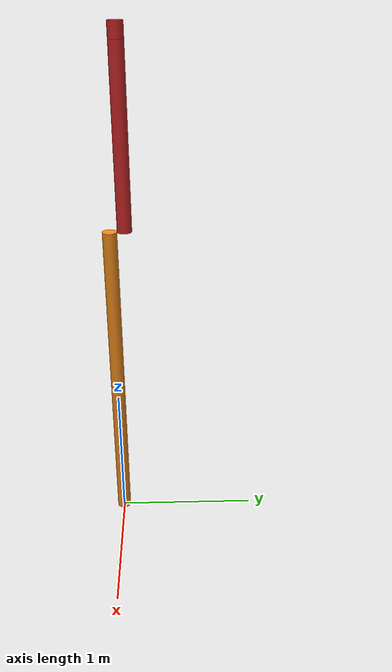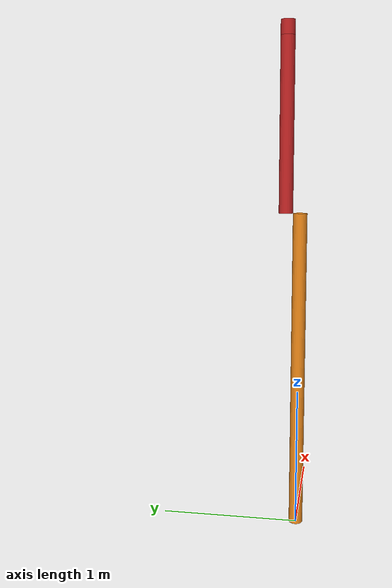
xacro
<?xml version="1.0"?>
<!-- Revolute-Revolute Manipulator -->
<robot name="rbt_pendulum" xmlns:xacro="http://www.ros.org/wiki/xacro">

	<xacro:property name="mass1" value="0.8" /> <!-- mass of Link 1 -->
	<xacro:property name="mass2" value="1.0" /> <!-- mass of Link 2 -->
	<xacro:property name="mass3" value="1.2" /> <!-- mass of Link 3 -->
	<xacro:property name="mass4" value="0.3" /> <!-- mass of Link 4 -->
	<xacro:property name="length1" value="2.3" /> <!-- Length of Link 1 -->
	<xacro:property name="length2" value="1.2" /> <!-- Length of Link 2 -->
	<xacro:property name="length3" value="0.1" /> <!-- Length of Link 3 -->
	<xacro:property name="length4" value="0.8" /> <!-- Length of Link 4 -->
	<xacro:property name="rod_radius" value="0.05" /> <!-- Same radius for all rod links -->

  <!-- Run Gazebo-specific initialization -->
  <xacro:include filename="$(find rbt_pendulum)/urdf/rbt_pendulum.gazebo" />

	<!-- Import Rviz colors -->
	<xacro:include filename="$(find rbt_pendulum)/urdf/materials.xacro" />

	<link name="world"/>

    <joint name="fixed" type="fixed">
    	<parent link="world"/>
    	<child link="link1"/>
  	</joint>

  	<link name="link1">
  		<collision>
  			<origin xyz="0 0 ${length1/2}" rpy="0 0 0"/>
  			<geometry>
  				<cylinder length="${length1}" radius="${rod_radius}" />
  			</geometry>
  		</collision>

  		<visual>
  			<origin xyz="0 0 ${length1/2}" rpy="0 0 0"/>
  			<geometry>
  				<cylinder length="${length1}" radius="${rod_radius}" />
  			</geometry>
  			<material name="orange"/>
  		</visual>

  		<inertial>
  			<origin xyz="0 0 ${-length1/2}" rpy="0 0 0"/>
  			<mass value="${mass1}"/>
  			<inertia
  				ixx="${mass1 / 12.0 * (length1*length1 + 3*rod_radius*rod_radius)}" ixy="0.0" ixz="0.0"
  				iyy="${mass1 / 12.0 * (length1*length1 + 3*rod_radius*rod_radius)}" iyz="0.0"
  				izz="${mass1 / 12.0 * (6*rod_radius*rod_radius)}"/>
  		</inertial>
  	</link>

  	<joint name="joint1" type="continuous">
    	<parent link="link1"/>
    	<child link="link2"/>
    	<origin xyz="0 0 ${length1}" rpy="0 0 0"/>
    	<axis xyz="0 1 0"/>
    	<dynamics damping="0.7"/>
  	</joint>

  	<link name="link2">
  		<collision>
  			<origin xyz="0 ${2*rod_radius} ${length2/2}" rpy="0 0 0"/>
  			<geometry>
  				<cylinder length="${length2}" radius="${rod_radius}" />
  			</geometry>
  		</collision>

  		<visual>
  			<origin xyz="0 ${2*rod_radius} ${length2/2}" rpy="0 0 0"/>
  			<geometry>
  				<cylinder length="${length2}" radius="${rod_radius}" />
  			</geometry>
  			<material name="red"/>
  		</visual>

  		<inertial>
  			<origin xyz="0 ${2*rod_radius} ${length2/2}" rpy="0 0 0"/>
  			<mass value="${mass2}"/>
  			<inertia
  				ixx="${mass2 / 12.0 * (length2*length2 + 3*rod_radius*rod_radius)}" ixy="0.0" ixz="0.0"
  				iyy="${mass2 / 12.0 * (length2*length2 + 3*rod_radius*rod_radius)}" iyz="0.0"
  				izz="${mass2 / 12.0 * (6*rod_radius*rod_radius)}"/>
  		</inertial>
  	</link>

    <joint name="joint2" type="fixed">
      <parent link="link2"/>
      <child link="link3"/>
      <origin xyz="0 0 ${length2}" rpy="0 0 0"/>
    </joint>

    <link name="link3">
      <collision>
        <origin xyz="0 ${2*rod_radius} ${length3/2}" rpy="0 0 0"/>
        <geometry>
          <cylinder length="${length3}" radius="${rod_radius}" />
        </geometry>
      </collision>

      <visual>
        <origin xyz="0 ${2*rod_radius} ${length3/2}" rpy="0 0 0"/>
        <geometry>
          <cylinder length="${length3}" radius="${rod_radius}" />
        </geometry>
        <material name="red"/>
      </visual>

      <inertial>
        <origin xyz="0 ${2*rod_radius} ${length3/2}" rpy="0 0 0"/>
        <mass value="${mass3}"/>
        <inertia
          ixx="${mass3 / 12.0 * (length3*length3 + 3*rod_radius*rod_radius)}" ixy="0.0" ixz="0.0"
          iyy="${mass3 / 12.0 * (length3*length3 + 3*rod_radius*rod_radius)}" iyz="0.0"
          izz="${mass3 / 12.0 * (6*rod_radius*rod_radius)}"/>
      </inertial>
    </link>

    <transmission name="simple_trans">
      <type>transmission_interface/SimpleTransmission</type>
      <joint name="joint1">
        <hardwareInterface>VelocityJointInterface</hardwareInterface>
      </joint>
      <actuator name="joint1">
        <mechanicalReduction>5</mechanicalReduction>
        <hardwareInterface>VelocityJointInterface</hardwareInterface>
      </actuator>
    </transmission>

</robot>

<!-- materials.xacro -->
<robot>

  <material name="Black">
    <color rgba="0.0 0.0 0.0 1.0"/>
  </material>

  <material name="Blue">
    <color rgba="0.0 0.0 0.8 1.0"/>
  </material>

  <material name="Green">
    <color rgba="0.0 0.8 0.0 1.0"/>
  </material>

  <material name="Grey">
    <color rgba="0.5 0.5 0.5 1.0"/>
  </material>

  <material name="Light_Grey">
    <color rgba="0.8 0.8 0.8 1.0"/>
  </material>

  <material name="Ivory">
    <color rgba="1.0 1.0 0.94 1.0"/>
  </material>

  <material name="Orange">
    <color rgba="${255/255} ${108/255} ${10/255} 1.0"/>
  </material>

  <material name="Brown">
    <color rgba="${222/255} ${207/255} ${195/255} 1.0"/>
  </material>

  <material name="Red">
    <color rgba="0.8 0.0 0.0 1.0"/>
  </material>

  <material name="White">
    <color rgba="1.0 1.0 1.0 1.0"/>
  </material>

</robot>
